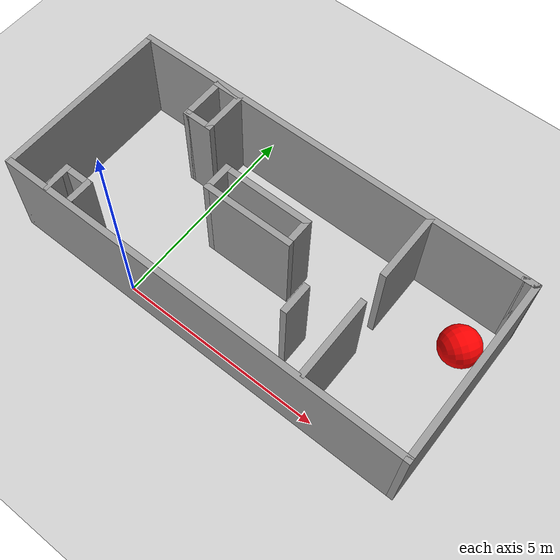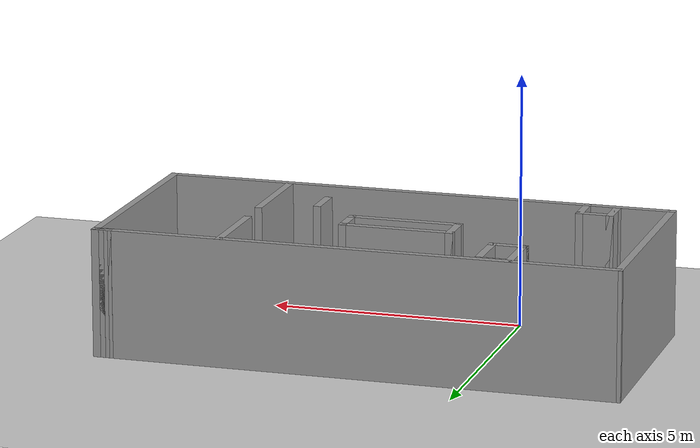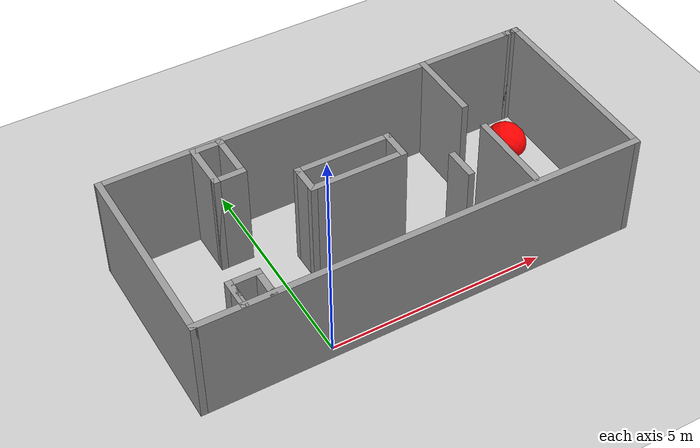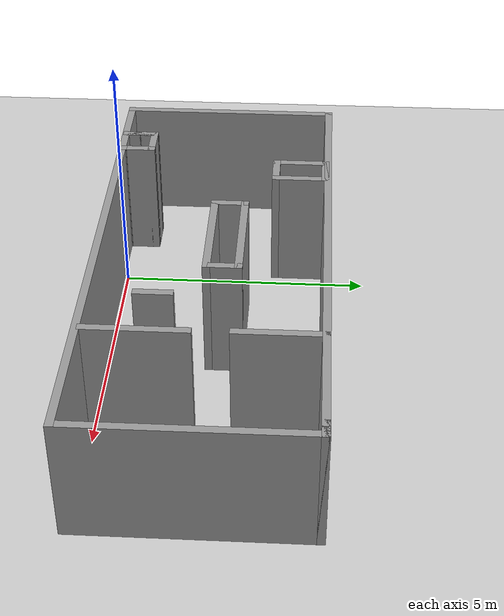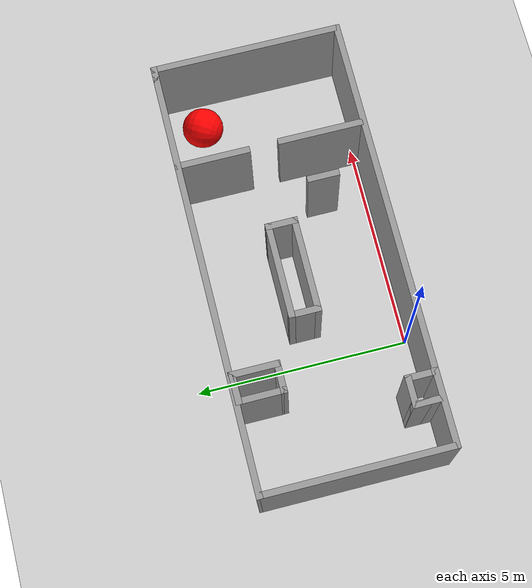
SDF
<sdf version="1.7">
 <world name="default">
  <light name="sun" type="directional">
   <pose>0 0 10 0 -0 0</pose>
   <diffuse>0.8 0.8 0.8 1</diffuse>
   <specular>0.2 0.2 0.2 1</specular>
   <attenuation>
    <range>1000</range>
    <constant>0.9</constant>
    <linear>0.01</linear>
    <quadratic>0.001</quadratic>
   </attenuation>
   <direction>-0.5 0.1 -0.9</direction>
   <spot><inner_angle>0</inner_angle><outer_angle>0</outer_angle><falloff>0</falloff></spot>
  </light>
  <model name="ground_plane">
   <static>1</static>
   <link name="link">
    <collision name="collision">
     <geometry><plane><normal>0 0 1</normal><size>100 100</size></plane></geometry>
     <surface><friction><ode><mu>100</mu><mu2>50</mu2></ode></friction></surface>
    </collision>
    <visual name="visual">
     <cast_shadows>0</cast_shadows>
     <geometry><plane><normal>0 0 1</normal><size>100 100</size></plane></geometry>
     <material>
      <script><uri>file://media/materials/scripts/gazebo.material</uri><name>Gazebo/Grey</name></script>
     </material>
    </visual>
   </link>
  </model>
  <gravity>0 0 -9.8</gravity>
  <magnetic_field>6e-06 2.3e-05 -4.2e-05</magnetic_field>
  <atmosphere type="adiabatic"/>
  <physics type="ode">
   <max_step_size>0.001</max_step_size>
   <real_time_factor>1</real_time_factor>
   <real_time_update_rate>1000</real_time_update_rate>
  </physics>
  <scene><ambient>0.4 0.4 0.4 1</ambient><background>0.7 0.7 0.7 1</background><shadows>1</shadows></scene>
  <spherical_coordinates>
   <surface_model>EARTH_WGS84</surface_model>
   <latitude_deg>0</latitude_deg>
   <longitude_deg>0</longitude_deg>
   <elevation>0</elevation>
   <heading_deg>0</heading_deg>
  </spherical_coordinates>
  <model name="Fixed_obstacles_v0">
   <pose>2.10086 2.03127 0 0 -0 0</pose>
   <link name="Wall_1">
    <collision name="Wall_1_Collision">
     <geometry><box><size>0.15 0.15 2.5</size></box></geometry>
     <pose>0 0 1.25 0 -0 0</pose>
    </collision>
    <visual name="Wall_1_Visual">
     <pose>0 0 1.25 0 -0 0</pose>
     <geometry><box><size>0.15 0.15 2.5</size></box></geometry>
     <material>
      <script><uri>file://media/materials/scripts/gazebo.material</uri><name>Gazebo/Grey</name></script>
      <ambient>1 1 1 1</ambient>
     </material>
     <meta><layer>0</layer></meta>
    </visual>
    <pose>4.80008 2.185 0 0 -0 0</pose>
   </link>
   <link name="Wall_11">
    <collision name="Wall_11_Collision">
     <geometry><box><size>1.17 0.15 2.5</size></box></geometry>
     <pose>0 0 1.25 0 -0 0</pose>
    </collision>
    <visual name="Wall_11_Visual">
     <pose>0 0 1.25 0 -0 0</pose>
     <geometry><box><size>1.17 0.15 2.5</size></box></geometry>
     <material>
      <script><uri>file://media/materials/scripts/gazebo.material</uri><name>Gazebo/Grey</name></script>
      <ambient>1 1 1 1</ambient>
     </material>
     <meta><layer>0</layer></meta>
    </visual>
    <pose>-2.97992 1.615 0 0 -0 1.5708</pose>
   </link>
   <link name="Wall_12">
    <collision name="Wall_12_Collision">
     <geometry><box><size>0.75 0.15 2.5</size></box></geometry>
     <pose>0 0 1.25 0 -0 0</pose>
    </collision>
    <visual name="Wall_12_Visual">
     <pose>0 0 1.25 0 -0 0</pose>
     <geometry><box><size>0.75 0.15 2.5</size></box></geometry>
     <material>
      <script><uri>file://media/materials/scripts/gazebo.material</uri><name>Gazebo/Grey</name></script>
      <ambient>1 1 1 1</ambient>
     </material>
     <meta><layer>0</layer></meta>
    </visual>
    <pose>-2.67992 2.115 0 0 -0 0</pose>
   </link>
   <link name="Wall_13">
    <collision name="Wall_13_Collision">
     <geometry><box><size>1.17 0.15 2.5</size></box></geometry>
     <pose>0 0 1.25 0 -0 0</pose>
    </collision>
    <visual name="Wall_13_Visual">
     <pose>0 0 1.25 0 -0 0</pose>
     <geometry><box><size>1.17 0.15 2.5</size></box></geometry>
     <material>
      <script><uri>file://media/materials/scripts/gazebo.material</uri><name>Gazebo/Grey</name></script>
      <ambient>1 1 1 1</ambient>
     </material>
     <meta><layer>0</layer></meta>
    </visual>
    <pose>-2.37992 1.615 0 0 -0 -1.5708</pose>
   </link>
   <link name="Wall_14">
    <collision name="Wall_14_Collision">
     <geometry><box><size>0.75 0.15 2.5</size></box></geometry>
     <pose>0 0 1.25 0 -0 0</pose>
    </collision>
    <visual name="Wall_14_Visual">
     <pose>0 0 1.25 0 -0 0</pose>
     <geometry><box><size>0.75 0.15 2.5</size></box></geometry>
     <material>
      <script><uri>file://media/materials/scripts/gazebo.material</uri><name>Gazebo/Grey</name></script>
      <ambient>1 1 1 1</ambient>
     </material>
     <meta><layer>0</layer></meta>
    </visual>
    <pose>-2.67992 1.105 0 0 -0 3.14159</pose>
   </link>
   <link name="Wall_15">
    <collision name="Wall_15_Collision">
     <geometry><box><size>0.15 0.15 2.5</size></box></geometry>
     <pose>0 0 1.25 0 -0 0</pose>
    </collision>
    <visual name="Wall_15_Visual">
     <pose>0 0 1.25 0 -0 0</pose>
     <geometry><box><size>0.15 0.15 2.5</size></box></geometry>
     <material>
      <script><uri>file://media/materials/scripts/gazebo.material</uri><name>Gazebo/Grey</name></script>
      <ambient>1 1 1 1</ambient>
     </material>
     <meta><layer>0</layer></meta>
    </visual>
    <pose>-2.97992 1.105 0 0 -0 0</pose>
   </link>
   <link name="Wall_17">
    <collision name="Wall_17_Collision">
     <geometry><box><size>0.75 0.15 2.5</size></box></geometry>
     <pose>0 0 1.25 0 -0 0</pose>
    </collision>
    <visual name="Wall_17_Visual">
     <pose>0 0 1.25 0 -0 0</pose>
     <geometry><box><size>0.75 0.15 2.5</size></box></geometry>
     <material>
      <script><uri>file://media/materials/scripts/gazebo.material</uri><name>Gazebo/Grey</name></script>
      <ambient>1 1 1 1</ambient>
     </material>
     <meta><layer>0</layer></meta>
    </visual>
    <pose>-3.98992 -1.865 0 0 -0 -1.5708</pose>
   </link>
   <link name="Wall_18">
    <collision name="Wall_18_Collision">
     <geometry><box><size>0.75 0.15 2.5</size></box></geometry>
     <pose>0 0 1.25 0 -0 0</pose>
    </collision>
    <visual name="Wall_18_Visual">
     <pose>0 0 1.25 0 -0 0</pose>
     <geometry><box><size>0.75 0.15 2.5</size></box></geometry>
     <material>
      <script><uri>file://media/materials/scripts/gazebo.material</uri><name>Gazebo/Grey</name></script>
      <ambient>1 1 1 1</ambient>
     </material>
     <meta><layer>0</layer></meta>
    </visual>
    <pose>-3.98992 -1.865 0 0 -0 1.5708</pose>
   </link>
   <link name="Wall_19">
    <collision name="Wall_19_Collision">
     <geometry><box><size>0.75 0.15 2.5</size></box></geometry>
     <pose>0 0 1.25 0 -0 0</pose>
    </collision>
    <visual name="Wall_19_Visual">
     <pose>0 0 1.25 0 -0 0</pose>
     <geometry><box><size>0.75 0.15 2.5</size></box></geometry>
     <material>
      <script><uri>file://media/materials/scripts/gazebo.material</uri><name>Gazebo/Grey</name></script>
      <ambient>1 1 1 1</ambient>
     </material>
     <meta><layer>0</layer></meta>
    </visual>
    <pose>-3.68992 -1.565 0 0 -0 0</pose>
   </link>
   <link name="Wall_20">
    <collision name="Wall_20_Collision">
     <geometry><box><size>0.75 0.15 2.5</size></box></geometry>
     <pose>0 0 1.25 0 -0 0</pose>
    </collision>
    <visual name="Wall_20_Visual">
     <pose>0 0 1.25 0 -0 0</pose>
     <geometry><box><size>0.75 0.15 2.5</size></box></geometry>
     <material>
      <script><uri>file://media/materials/scripts/gazebo.material</uri><name>Gazebo/Grey</name></script>
      <ambient>1 1 1 1</ambient>
     </material>
     <meta><layer>0</layer></meta>
    </visual>
    <pose>-3.38992 -1.865 0 0 -0 -1.5708</pose>
   </link>
   <link name="Wall_21">
    <collision name="Wall_21_Collision">
     <geometry><box><size>0.16 0.15 2.5</size></box></geometry>
     <pose>0 0 1.25 0 -0 0</pose>
    </collision>
    <visual name="Wall_21_Visual">
     <pose>0 0 1.25 0 -0 0</pose>
     <geometry><box><size>0.16 0.15 2.5</size></box></geometry>
     <material>
      <script><uri>file://media/materials/scripts/gazebo.material</uri><name>Gazebo/Grey</name></script>
      <ambient>1 1 1 1</ambient>
     </material>
     <meta><layer>0</layer></meta>
    </visual>
    <pose>-3.38492 -2.165 0 0 -0 0</pose>
   </link>
   <link name="Wall_23">
    <collision name="Wall_23_Collision">
     <geometry><box><size>2.25 0.15 2.5</size></box></geometry>
     <pose>0 0 1.25 0 -0 0</pose>
    </collision>
    <visual name="Wall_23_Visual">
     <pose>0 0 1.25 0 -0 0</pose>
     <geometry><box><size>2.25 0.15 2.5</size></box></geometry>
     <material>
      <script><uri>file://media/materials/scripts/gazebo.material</uri><name>Gazebo/Grey</name></script>
      <ambient>1 1 1 1</ambient>
     </material>
     <meta><layer>0</layer></meta>
    </visual>
    <pose>-0.349923 0.535 0 0 -0 0</pose>
   </link>
   <link name="Wall_24">
    <collision name="Wall_24_Collision">
     <geometry><box><size>0.75 0.15 2.5</size></box></geometry>
     <pose>0 0 1.25 0 -0 0</pose>
    </collision>
    <visual name="Wall_24_Visual">
     <pose>0 0 1.25 0 -0 0</pose>
     <geometry><box><size>0.75 0.15 2.5</size></box></geometry>
     <material>
      <script><uri>file://media/materials/scripts/gazebo.material</uri><name>Gazebo/Grey</name></script>
      <ambient>1 1 1 1</ambient>
     </material>
     <meta><layer>0</layer></meta>
    </visual>
    <pose>0.700077 0.235 0 0 -0 -1.5708</pose>
   </link>
   <link name="Wall_25">
    <collision name="Wall_25_Collision">
     <geometry><box><size>2.25 0.15 2.5</size></box></geometry>
     <pose>0 0 1.25 0 -0 0</pose>
    </collision>
    <visual name="Wall_25_Visual">
     <pose>0 0 1.25 0 -0 0</pose>
     <geometry><box><size>2.25 0.15 2.5</size></box></geometry>
     <material>
      <script><uri>file://media/materials/scripts/gazebo.material</uri><name>Gazebo/Grey</name></script>
      <ambient>1 1 1 1</ambient>
     </material>
     <meta><layer>0</layer></meta>
    </visual>
    <pose>-0.349923 -0.065 0 0 -0 3.14159</pose>
   </link>
   <link name="Wall_26">
    <collision name="Wall_26_Collision">
     <geometry><box><size>0.75 0.15 2.5</size></box></geometry>
     <pose>0 0 1.25 0 -0 0</pose>
    </collision>
    <visual name="Wall_26_Visual">
     <pose>0 0 1.25 0 -0 0</pose>
     <geometry><box><size>0.75 0.15 2.5</size></box></geometry>
     <material>
      <script><uri>file://media/materials/scripts/gazebo.material</uri><name>Gazebo/Grey</name></script>
      <ambient>1 1 1 1</ambient>
     </material>
     <meta><layer>0</layer></meta>
    </visual>
    <pose>-1.39992 0.235 0 0 -0 1.5708</pose>
   </link>
   <link name="Wall_28">
    <collision name="Wall_28_Collision">
     <geometry><box><size>0.75 0.15 2.5</size></box></geometry>
     <pose>0 0 1.25 0 -0 0</pose>
    </collision>
    <visual name="Wall_28_Visual">
     <pose>0 0 1.25 0 -0 0</pose>
     <geometry><box><size>0.75 0.15 2.5</size></box></geometry>
     <material>
      <script><uri>file://media/materials/scripts/gazebo.material</uri><name>Gazebo/Grey</name></script>
      <ambient>1 1 1 1</ambient>
     </material>
     <meta><layer>0</layer></meta>
    </visual>
    <pose>1.57008 -0.955 0 0 -0 -1.5708</pose>
   </link>
   <link name="Wall_3">
    <collision name="Wall_3_Collision">
     <geometry><box><size>10 0.15 2.5</size></box></geometry>
     <pose>0 0 1.25 0 -0 0</pose>
    </collision>
    <visual name="Wall_3_Visual">
     <pose>0 0 1.25 0 -0 0</pose>
     <geometry><box><size>10 0.15 2.5</size></box></geometry>
     <material>
      <script><uri>file://media/materials/scripts/gazebo.material</uri><name>Gazebo/Grey</name></script>
      <ambient>1 1 1 1</ambient>
     </material>
     <meta><layer>0</layer></meta>
    </visual>
    <pose>-0.124923 2.175 0 0 -0 -3.13956</pose>
   </link>
   <link name="Wall_30">
    <collision name="Wall_30_Collision">
     <geometry><box><size>1.75 0.15 2.5</size></box></geometry>
     <pose>0 0 1.25 0 -0 0</pose>
    </collision>
    <visual name="Wall_30_Visual">
     <pose>0 0 1.25 0 -0 0</pose>
     <geometry><box><size>1.75 0.15 2.5</size></box></geometry>
     <material>
      <script><uri>file://media/materials/scripts/gazebo.material</uri><name>Gazebo/Grey</name></script>
      <ambient>1 1 1 1</ambient>
     </material>
     <meta><layer>0</layer></meta>
    </visual>
    <pose>2.60008 1.375 0 0 -0 -1.5708</pose>
   </link>
   <link name="Wall_32">
    <collision name="Wall_32_Collision">
     <geometry><box><size>2 0.15 2.5</size></box></geometry>
     <pose>0 0 1.25 0 -0 0</pose>
    </collision>
    <visual name="Wall_32_Visual">
     <pose>0 0 1.25 0 -0 0</pose>
     <geometry><box><size>2 0.15 2.5</size></box></geometry>
     <material>
      <script><uri>file://media/materials/scripts/gazebo.material</uri><name>Gazebo/Grey</name></script>
      <ambient>1 1 1 1</ambient>
     </material>
     <meta><layer>0</layer></meta>
    </visual>
    <pose>2.62008 -1.16 0 0 -0 -1.5708</pose>
   </link>
   <link name="Wall_4">
    <collision name="Wall_4_Collision">
     <geometry><box><size>4.5 0.15 2.5</size></box></geometry>
     <pose>0 0 1.25 0 -0 0</pose>
    </collision>
    <visual name="Wall_4_Visual">
     <pose>0 0 1.25 0 -0 0</pose>
     <geometry><box><size>4.5 0.15 2.5</size></box></geometry>
     <material>
      <script><uri>file://media/materials/scripts/gazebo.material</uri><name>Gazebo/Grey</name></script>
      <ambient>1 1 1 1</ambient>
     </material>
     <meta><layer>0</layer></meta>
    </visual>
    <pose>-5.04992 -0.01 0 0 -0 -1.5708</pose>
   </link>
   <link name="Wall_5">
    <collision name="Wall_5_Collision">
     <geometry><box><size>10.25 0.15 2.5</size></box></geometry>
     <pose>0 0 1.25 0 -0 0</pose>
    </collision>
    <visual name="Wall_5_Visual">
     <pose>0 0 1.25 0 -0 0</pose>
     <geometry><box><size>10.25 0.15 2.5</size></box></geometry>
     <material>
      <script><uri>file://media/materials/scripts/gazebo.material</uri><name>Gazebo/Grey</name></script>
      <ambient>1 1 1 1</ambient>
     </material>
     <meta><layer>0</layer></meta>
    </visual>
    <pose>7.7e-05 -2.185 0 0 -0 0</pose>
   </link>
   <link name="Wall_6">
    <collision name="Wall_6_Collision">
     <geometry><box><size>4.52056 0.15 2.5</size></box></geometry>
     <pose>0 0 1.25 0 -0 0</pose>
    </collision>
    <visual name="Wall_6_Visual">
     <pose>0 0 1.25 0 -0 0</pose>
     <geometry><box><size>4.52056 0.15 2.5</size></box></geometry>
     <material>
      <script><uri>file://media/materials/scripts/gazebo.material</uri><name>Gazebo/Grey</name></script>
      <ambient>1 1 1 1</ambient>
     </material>
     <meta><layer>0</layer></meta>
    </visual>
    <pose>5.05008 -0 0 0 -0 1.5708</pose>
   </link>
   <link name="Wall_7">
    <collision name="Wall_7_Collision">
     <geometry><box><size>0.4 0.15 2.5</size></box></geometry>
     <pose>0 0 1.25 0 -0 0</pose>
    </collision>
    <visual name="Wall_7_Visual">
     <pose>0 0 1.25 0 -0 0</pose>
     <geometry><box><size>0.4 0.15 2.5</size></box></geometry>
     <material>
      <script><uri>file://media/materials/scripts/gazebo.material</uri><name>Gazebo/Grey</name></script>
      <ambient>1 1 1 1</ambient>
     </material>
     <meta><layer>0</layer></meta>
    </visual>
    <pose>4.92508 2.185 0 0 -0 3.14159</pose>
   </link>
   <link name="Wall_8">
    <collision name="Wall_8_Collision">
     <geometry><box><size>0.4 0.15 2.5</size></box></geometry>
     <pose>0 0 1.25 0 -0 0</pose>
    </collision>
    <visual name="Wall_8_Visual">
     <pose>0 0 1.25 0 -0 0</pose>
     <geometry><box><size>0.4 0.15 2.5</size></box></geometry>
     <material>
      <script><uri>file://media/materials/scripts/gazebo.material</uri><name>Gazebo/Grey</name></script>
      <ambient>1 1 1 1</ambient>
     </material>
     <meta><layer>0</layer></meta>
    </visual>
    <pose>4.92508 2.185 0 0 -0 0</pose>
   </link>
   <link name="Wall_9">
    <collision name="Wall_9_Collision">
     <geometry><box><size>0.15 0.15 2.5</size></box></geometry>
     <pose>0 0 1.25 0 -0 0</pose>
    </collision>
    <visual name="Wall_9_Visual">
     <pose>0 0 1.25 0 -0 0</pose>
     <geometry><box><size>0.15 0.15 2.5</size></box></geometry>
     <material>
      <script><uri>file://media/materials/scripts/gazebo.material</uri><name>Gazebo/Grey</name></script>
      <ambient>1 1 1 1</ambient>
     </material>
     <meta><layer>0</layer></meta>
    </visual>
    <pose>5.05008 2.185 0 0 -0 0</pose>
   </link>
   <static>1</static>
  </model>
  <model name="goal_marker">
   <link name="link_0">
    <inertial>
     <mass>1</mass>
     <inertia><ixx>0.1</ixx><ixy>0</ixy><ixz>0</ixz><iyy>0.1</iyy><iyz>0</iyz><izz>0.1</izz></inertia>
    </inertial>
    <pose>0.037891 -0.022565 0.041597 1.59907 0.275295 2.58646</pose>
    <gravity>0</gravity>
    <visual name="visual">
     <geometry><sphere><radius>0.5</radius></sphere></geometry>
     <material>
      <lighting>1</lighting>
      <script><uri>file://media/materials/scripts/gazebo.material</uri><name>Gazebo/Grey</name></script>
      <shader type="pixel"><normal_map>__default__</normal_map></shader>
      <ambient>1 0 0 1</ambient>
     </material>
    </visual>
    <collision name="collision">
     <geometry><sphere><radius>0.5</radius></sphere></geometry>
     <surface>
      <friction>
       <ode><mu>1</mu><mu2>1</mu2><fdir1>0 0 0</fdir1><slip1>0</slip1><slip2>0</slip2></ode>
       <torsional>
        <coefficient>1</coefficient>
        <patch_radius>0</patch_radius>
        <surface_radius>0</surface_radius>
        <use_patch_radius>1</use_patch_radius>
        <ode><slip>0</slip></ode>
       </torsional>
      </friction>
      <bounce><restitution_coefficient>0</restitution_coefficient><threshold>1e+06</threshold></bounce>
      <contact>
       <collide_without_contact>0</collide_without_contact>
       <collide_without_contact_bitmask>1</collide_without_contact_bitmask>
       <collide_bitmask>1</collide_bitmask>
       <ode>
        <soft_cfm>0</soft_cfm>
        <soft_erp>0.2</soft_erp>
        <kp>1e+13</kp>
        <kd>1</kd>
        <max_vel>0.01</max_vel>
        <min_depth>0</min_depth>
       </ode>
       <bullet>
        <split_impulse>1</split_impulse>
        <split_impulse_penetration_threshold>-0.01</split_impulse_penetration_threshold>
        <soft_cfm>0</soft_cfm>
        <soft_erp>0.2</soft_erp>
        <kp>1e+13</kp>
        <kd>1</kd>
       </bullet>
      </contact>
     </surface>
    </collision>
   </link>
   <static>1</static>
   <pose>6.43388 3.403 -0 0 -0 0</pose>
  </model>
  <plugin name="static_map" filename="libgazebo_ros_map.so">
   <map_topic>map</map_topic>
   <frame_name>map</frame_name>
   <resolution>0.05</resolution>
   <init_pose>-10 -10 0</init_pose>
  </plugin>
 </world>
</sdf>
